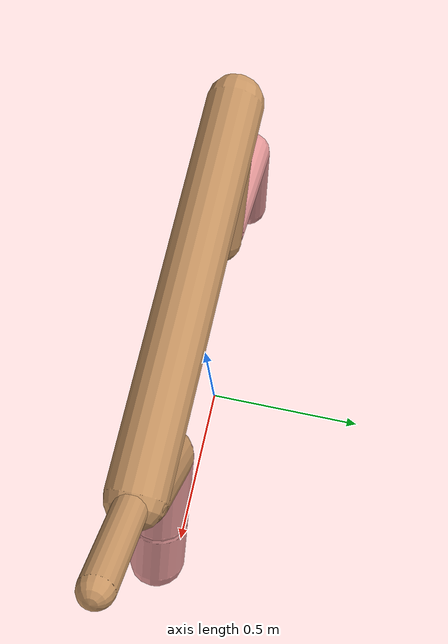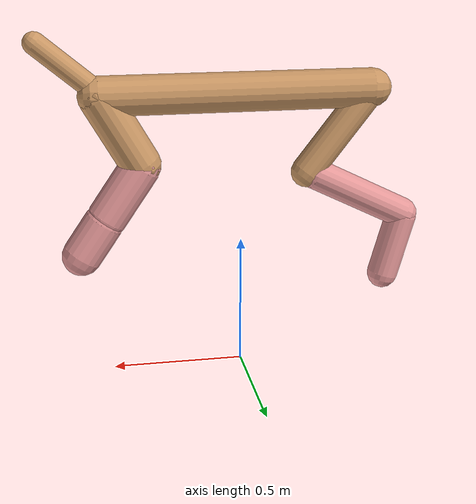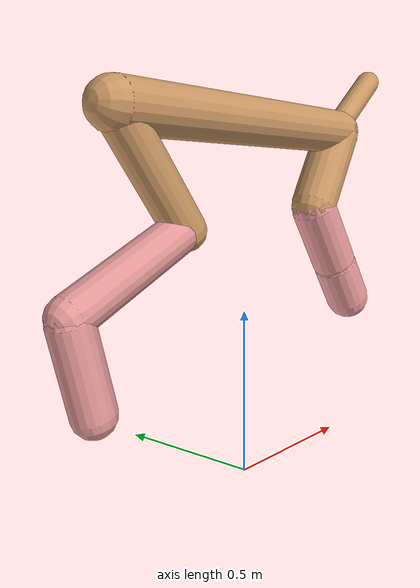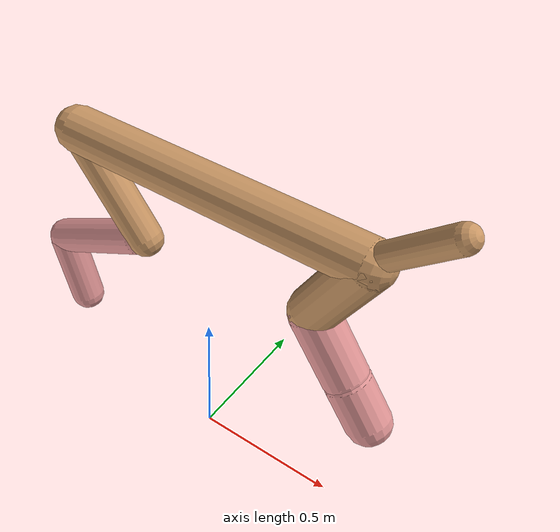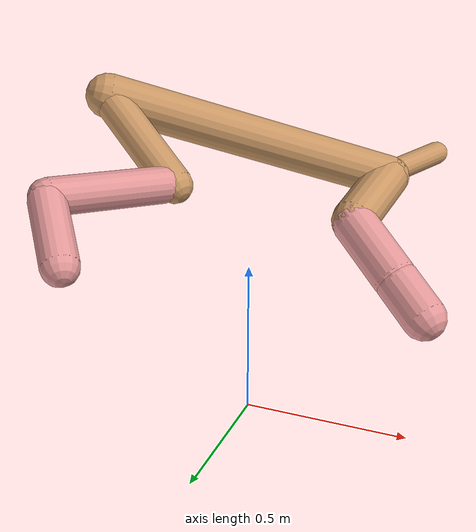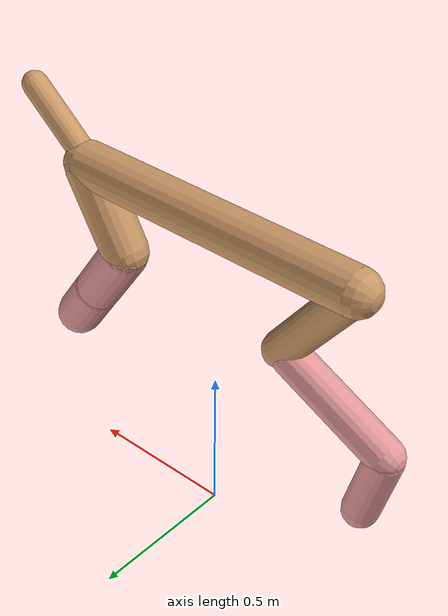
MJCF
<mujoco model="cheetah">
  <compiler angle="radian" coordinate="local" inertiafromgeom="true" settotalmass="14" />
  <default>
    <joint armature=".1" damping=".01" limited="true" solimplimit="0 .8 .03" solreflimit=".02 1" stiffness="8" />
    <geom conaffinity="0" condim="3" contype="1" friction="0.8 .1 .1" rgba="0.8 0.6 .4 1" solimp="0.0 0.8 0.01" solref="0.02 1" />
    <motor ctrllimited="true" ctrlrange="-1 1" />
  </default>
  <size nstack="300000" nuser_geom="1" />
  <option gravity="0 0 -9.81" timestep="0.01" />
  <worldbody>
    <body name="torso" pos="0.0 0.0 1.075976457624971">
      <joint armature="0" axis="1 0 0" damping="0" limited="false" name="ignorex" pos="0 0 0" stiffness="0" type="slide" />
      <joint armature="0" axis="0 0 1" damping="0" limited="false" name="ignorez" pos="0 0 0" stiffness="0" type="slide" />
      <joint armature="0" axis="0 1 0" damping="0" limited="false" name="ignorey" pos="0 0 0" stiffness="0" type="hinge" />
      <geom fromto="-0.5 0.0 0.0 0.5273803599757777 0.0 0.0" name="torso" size="0.0747978133822881" type="capsule" />
      <geom axisangle="0 1 0 .87" name="head" pos="0.6273803599757776 0.0 0.1" size="0.041823838218705216 0.15" type="capsule" />

      <body name="bthigh" pos="-.5 0 0">
        <joint axis="0 1 0" damping="6" name="bthigh" pos="0 0 0" range="-.52 1.05" stiffness="240" type="hinge" />
        <geom axisangle="0 1 0 -3.8" name="bthigh" pos="0.12816894012357077 0.0 -0.16661962216064202" size="0.05972957435998694 0.19120049691154306" type="capsule" />
        <body name="bshin" pos="0.21633788024714157 0.0 -0.32323924432128404">
          <joint axis="0 1 0" damping="4.5" name="bshin" pos="0 0 0" range="-.785 .785" stiffness="180" type="hinge" />
          <geom axisangle="0 1 0 -2.03" name="bshin" pos="-0.18274791104350874 0.0 -0.09137395552175437" rgba="0.9 0.6 0.6 1" size="0.05972957435998694 0.19779361749469973" type="capsule" />
          <body name="bfoot" pos="-0.3654958220870175 0.0 -0.18274791104350874">
            <joint axis="0 1 0" damping="3" name="bfoot" pos="0 0 0" range="-.4 .785" stiffness="120" type="hinge" />
            <geom axisangle="0 1 0 -.27" name="bfoot" pos="0.03884951526899072 0.0 -0.12561343270307" rgba="0.9 0.6 0.6 1" size="0.05972957435998694 0.12395066696334515" type="capsule" />
            <inertial mass="10" />
          </body>
        </body>
      </body>
      <body name="fthigh" pos="0.5273803599757776 0.0 0.0">
        <joint axis="0 1 0" damping="4.5" name="fthigh" pos="0 0 0" range="-1.5 0.8" stiffness="180" type="hinge" />
        <geom axisangle="0 1 0 .52" name="fthigh" pos="-0.07731912531957041 0.0 -0.13254707197640642" size="0.07622169446934446 0.14752579122198511" type="capsule" />
        <body name="fshin" pos="-0.15463825063914083 0.0 -0.26509414395281283">
          <joint axis="0 1 0" damping="3" name="fshin" pos="0 0 0" range="-1.2 1.1" stiffness="120" type="hinge" />
          <geom axisangle="0 1 0 -.6" name="fshin" pos="0.07177819275221266 0.0 -0.09938518996460213" rgba="0.9 0.6 0.6 1" size="0.07622169446934446 0.11757694638744677" type="capsule" />
          <body name="ffoot" pos="0.14355638550442532 0.0 -0.19877037992920427">
            <joint axis="0 1 0" damping="1.5" name="ffoot" pos="0 0 0" range="-3.1 -0.3" stiffness="60" type="hinge" />
            <geom axisangle="0 1 0 -.6" name="ffoot" pos="0.049134174670064965 0.0 -0.07643093837565662" rgba="0.9 0.6 0.6 1" size="0.07622169446934446 0.077645153274729" type="capsule" />
            <inertial mass="10" />
          </body>
        </body>
      </body>
    </body>
  </worldbody>
  <actuator>
    <motor gear="120" joint="bthigh" name="bthigh" />
    <motor gear="90" joint="bshin" name="bshin" />
    <motor gear="60" joint="bfoot" name="bfoot" />
    <motor gear="120" joint="fthigh" name="fthigh" />
    <motor gear="60" joint="fshin" name="fshin" />
    <motor gear="30" joint="ffoot" name="ffoot" />
  </actuator>
</mujoco>
